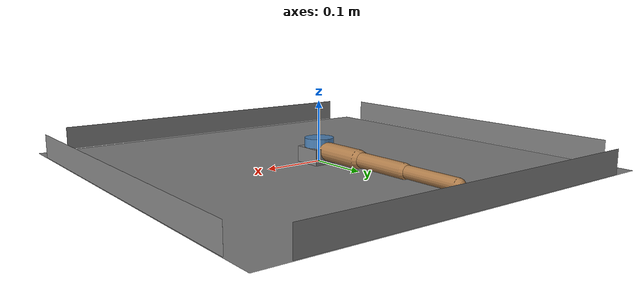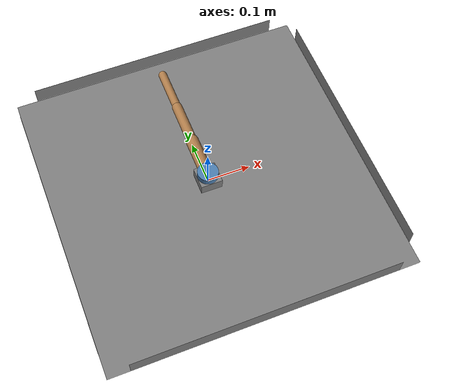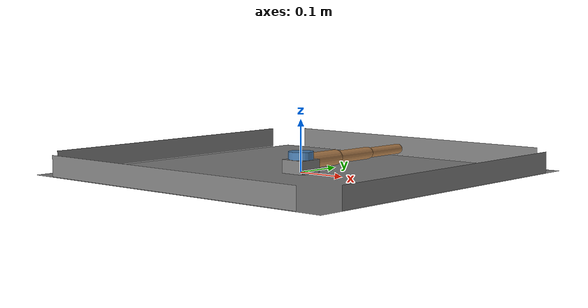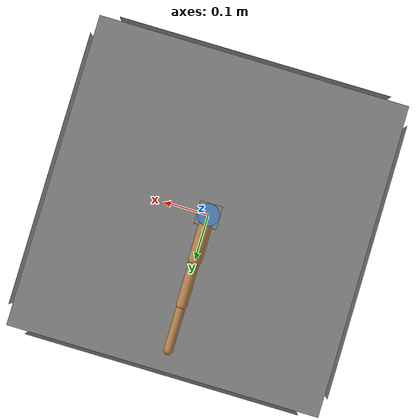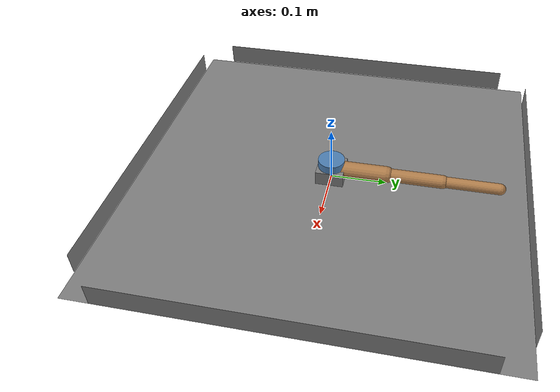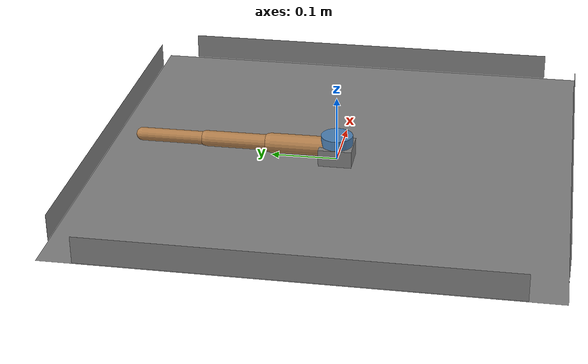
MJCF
<!--NOTE:-->
<!--COMPARE AT 30 and 100 SAMPLES with cov reg as 0.5 with 0.9 importance lambda 0.001-->
<!--0.9 importance and 1 cov reg fro 100 samples-->

<mujoco model="planar point mass">
    <compiler angle="radian" />
    <option timestep="0.01" cone="elliptic"/>
    <visual>
        <quality shadowsize="2048" />
        <headlight ambient="0.4 0.4 0.4" diffuse="0.8 0.8 0.8" specular="0.1 0.1 0.1" />
    </visual>

    <default class="main">
        <geom friction=".7" solimp="0.9 0.97 0.001" solref=".01 1"/>
        <joint solimplimit="0 0.99 0.01" solreflimit=".005 1"/>
        <general ctrllimited="true" ctrlrange="-1 1" />
    </default>

    <default class="object">
        <geom material="self"/>
    </default>

    <asset>
        <texture type="skybox" name="skybox" builtin="gradient" mark="random" rgb1="0.4 0.6 0.8" rgb2="0 0 0" markrgb="1 1 1" width="800" height="4800" />
        <texture type="2d" name="grid" builtin="checker" mark="edge" rgb1="0.1 0.2 0.3" rgb2="0.2 0.3 0.4" markrgb="0.2 0.3 0.4" width="300" height="300" />
        <material name="grid" texture="grid" texuniform="true" reflectance="0.2" />
        <material name="self" rgba="0.7 0.5 0.3 1" />
        <material name="self_default" rgba="0.7 0.5 0.3 1" />
        <material name="self_highlight" rgba="0 0.5 0.3 1" />
        <material name="effector" rgba="0.7 0.4 0.2 1" />
        <material name="effector_default" rgba="0.7 0.4 0.2 1" />
        <material name="effector_highlight" rgba="0 0.5 0.3 1" />
        <material name="decoration" rgba="0.3 0.5 0.7 1" />
        <material name="eye" rgba="0 0.2 1 1" />
        <material name="target" rgba="0.6 0.3 0.3 1" />
        <material name="target_default" rgba="0.6 0.3 0.3 1" />
        <material name="target_highlight" rgba="0.6 0.3 0.3 0.4" />
    </asset>
    <worldbody>
        <geom name="ground" size="0.35 0.35 0.1" pos="-0.0 0 0.0" type="plane" />
        <geom name="wall_x" size="0.02 0.3 0.02" pos="-0.35 0 0.02" quat="0.707107 0 0.707107 0" type="plane" />
        <geom name="wall_y" size="0.3 0.02 0.02" pos="0 -0.35 0.02" quat="0.707107 -0.707107 0 0" type="plane" />
        <geom name="wall_neg_x" size="0.02 0.3 0.02" pos="0.35 0 0.02" quat="0.707107 0 -0.707107 0" type="plane" />
        <geom name="wall_neg_y" size="0.3 0.02 0.02" pos="0 0.35 0.02" quat="0.707107 0.707107 0 0" type="plane" />
        <camera name="fixed" pos="0 0 0.75" />
        <light name="light" pos="0 0 1" dir="0 0 -1" />
        <body pos="0 0 0.02" quat="0.707107 0.707107 0 0">
            <inertial pos="0 0 -0.0291932" mass="0.0591876" diaginertia="7.61519e-05 7.40747e-05 6.21876e-06" />
            <joint name="proximal" pos="0 0 0" axis="0 -1 0" ref="-1.5708" range="-130 -60" damping="0.25" />
            <geom name="proximal_decoration" size="0.024 0.02" quat="0.707107 0.707107 0 0" type="cylinder" material="decoration" />
            <geom name="proximal" size="0.015 0.05" pos="0 0 -0.05" type="capsule" material="self" />
            <body pos="0 0 -0.1">
                <inertial pos="0 0 -0.05" mass="0.0217147" diaginertia="2.14541e-05 2.14541e-05 6.9487e-07" />
                <joint name="distal" pos="0 0 0" axis="0 -1 0" range="-45 45" damping="0.3" />
                <geom name="distal" size="0.012 0.05" pos="0 0 -0.05" type="capsule" material="self" />
                <body pos="0 0 -0.1">
                    <inertial pos="0 0 -0.05" mass="0.00522761" diaginertia="4.73273e-06 4.73273e-06 4.18209e-08" />
                    <joint name="distal2" pos="0 0 0" axis="0 -1 0" range="-45 45" damping="0.4" />
                    <geom name="distal2" size="0.01 0.05" pos="0 0 -0.05" type="capsule" material="self"/>
                </body>
            </body>
        </body>

        <body>
            <geom type="box" pos="0.0, 0.0, 0.0" size="0.025 0.025 0.025"/>
            <joint name="object:joint" type="free" damping="0.01"></joint>
        </body>
    </worldbody>
    <actuator>
        <general name="proximal" joint="proximal" gear="0.35 0 0 0 0 0" />
        <general name="distal" joint="distal" gear="0.5 0 0 0 0 0" />
        <general name="distal2" joint="distal2" gear="0.6 0 0 0 0 0" />
    </actuator>
</mujoco>
